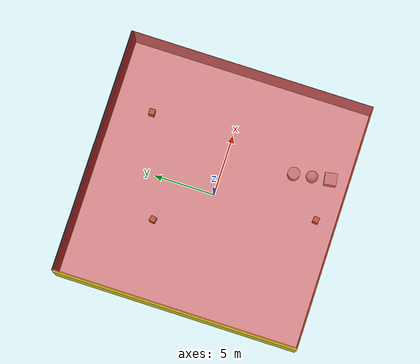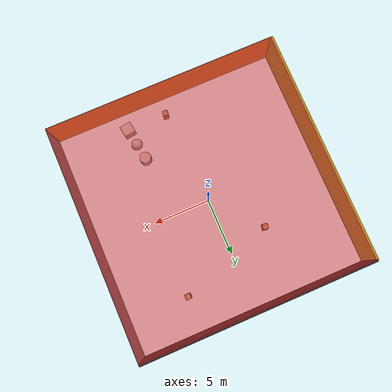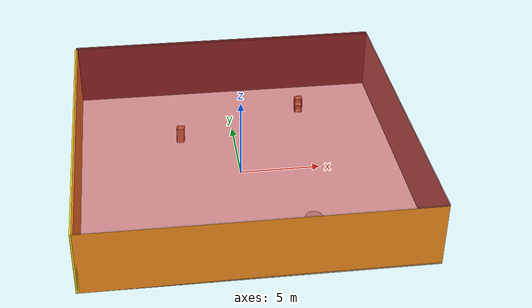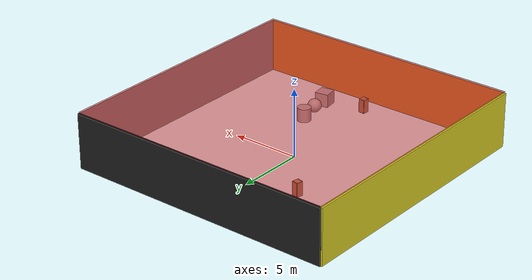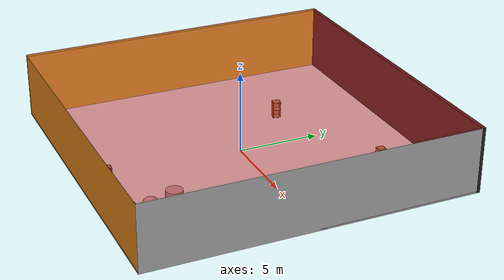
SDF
<sdf version="1.4">
 <world name="default">
  <physics type="ode">
   <max_step_size>0.001</max_step_size>
   <real_time_factor>1</real_time_factor>
   <real_time_update_rate>1000</real_time_update_rate>
   <gravity>0 0 -9.8</gravity>
  </physics>
  <scene><ambient>0.4 0.4 0.4 1</ambient><background>0.7 0.7 0.7 1</background><shadows>1</shadows></scene>
  <model name="Surrounding">
   <static>1</static>
   <link name="Ceiling">
    <collision name="Ceiling_Collision"><geometry><box><size>20 20 0.1</size></box></geometry></collision>
    <visual name="Ceiling_Visual">
     <geometry><box><size>20 20 0.1</size></box></geometry>
     <material>
      <script><uri>file://media/materials/scripts/gazebo.material</uri><name>Gazebo/RedTransparent</name></script>
     </material>
    </visual>
    <pose>0 0 4.05 0 0 0</pose>
   </link>
   <link name="Wall_South">
    <collision name="Wall_South_Collision">
     <geometry><box><size>20 0 4</size></box></geometry>
     <pose>0 0 2 0 -0 0</pose>
    </collision>
    <visual name="Wall_South_Visual">
     <pose>0 0 2 0 -0 0</pose>
     <geometry><box><size>20 0 4</size></box></geometry>
     <material>
      <script><uri>file://media/materials/scripts/gazebo.material</uri><name>Gazebo/Orange</name></script>
     </material>
    </visual>
    <velocity_decay><linear>0</linear><angular>0</angular></velocity_decay>
    <pose>0 -10 0 0 -0 0</pose>
   </link>
   <link name="Wall_East">
    <collision name="Wall_21_Collision">
     <geometry><box><size>20 0 4</size></box></geometry>
     <pose>0 0 2 0 -0 0</pose>
    </collision>
    <visual name="Wall_21_Visual">
     <pose>0 0 2 0 -0 0</pose>
     <geometry><box><size>20 0 4</size></box></geometry>
     <material>
      <script><uri>file://media/materials/scripts/gazebo.material</uri><name>Gazebo/GreyGradientSky</name></script>
     </material>
    </visual>
    <velocity_decay><linear>0</linear><angular>0</angular></velocity_decay>
    <pose>10 0 0 0 -0 1.5708</pose>
   </link>
   <link name="Wall_North">
    <collision name="Wall_22_Collision">
     <geometry><box><size>20 0.2 4</size></box></geometry>
     <pose>0 0 2 0 -0 0</pose>
    </collision>
    <visual name="Wall_22_Visual">
     <pose>0 0 2 0 -0 0</pose>
     <geometry><box><size>20 0.2 4</size></box></geometry>
     <material>
      <script><uri>file://media/materials/scripts/gazebo.material</uri><name>Gazebo/Black</name></script>
     </material>
    </visual>
    <velocity_decay><linear>0</linear><angular>0</angular></velocity_decay>
    <pose>0 10 0 0 -0 0</pose>
   </link>
   <link name="Wall_West">
    <collision name="Wall_23_Collision">
     <geometry><box><size>20 0.2 4</size></box></geometry>
     <pose>0 0 2 0 -0 0</pose>
    </collision>
    <visual name="Wall_23_Visual">
     <pose>0 0 2 0 -0 0</pose>
     <geometry><box><size>20 0.2 4</size></box></geometry>
     <material>
      <script><uri>file://media/materials/scripts/gazebo.material</uri><name>Gazebo/Yellow</name></script>
     </material>
    </visual>
    <velocity_decay><linear>0</linear><angular>0</angular></velocity_decay>
    <pose>-10 0 0 0 0 -1.5708</pose>
   </link>
   <link name="Ground_link">
    <collision name="collision">
     <pose>0 0 .05 0 -0 0</pose>
     <geometry><box><size>20 20 0.1</size></box></geometry>
    </collision>
    <visual name="visual">
     <pose>0 0 .05 0 -0 0</pose>
     <geometry><box><size>20 20 0.1</size></box></geometry>
     <material>
      <script><uri>file://media/materials/scripts/gazebo.material</uri><name>Gazebo/GreyTransparent</name></script>
     </material>
    </visual>
   </link>
   <static>1</static>
  </model>
  <spherical_coordinates>
   <surface_model>EARTH_WGS84</surface_model>
   <latitude_deg>0</latitude_deg>
   <longitude_deg>0</longitude_deg>
   <elevation>0</elevation>
   <heading_deg>0</heading_deg>
  </spherical_coordinates>
  <light name="lightball_0" type="diffuse">
   <diffuse>0.8 0.8 0.8 1</diffuse>
   <specular>0.2 0.2 0.2 1</specular>
   <attenuation>
    <range>100</range>
    <constant>0.7</constant>
    <linear>0.01</linear>
    <quadratic>0.001</quadratic>
   </attenuation>
   <direction>-0.5 0.1 -0.9</direction>
   <pose>-5.67751510429 -7.08755802048 3.49290616539 0 0 0</pose>
  </light>
  <light name="lightball_1" type="diffuse">
   <diffuse>0.8 0.8 0.8 1</diffuse>
   <specular>0.2 0.2 0.2 1</specular>
   <attenuation>
    <range>100</range>
    <constant>0.7</constant>
    <linear>0.01</linear>
    <quadratic>0.001</quadratic>
   </attenuation>
   <direction>-0.5 0.1 -0.9</direction>
   <pose>-5.7792822959 -8.85557502532 1.80875577186 0 0 0</pose>
  </light>
  <light name="lightball_2" type="diffuse">
   <diffuse>0.8 0.8 0.8 1</diffuse>
   <specular>0.2 0.2 0.2 1</specular>
   <attenuation>
    <range>100</range>
    <constant>0.7</constant>
    <linear>0.01</linear>
    <quadratic>0.001</quadratic>
   </attenuation>
   <direction>-0.5 0.1 -0.9</direction>
   <pose>3.76409586982 9.35867272397 1.94667245807 0 0 0</pose>
  </light>
  <light name="lightball_3" type="diffuse">
   <diffuse>0.8 0.8 0.8 1</diffuse>
   <specular>0.2 0.2 0.2 1</specular>
   <attenuation>
    <range>100</range>
    <constant>0.7</constant>
    <linear>0.01</linear>
    <quadratic>0.001</quadratic>
   </attenuation>
   <direction>-0.5 0.1 -0.9</direction>
   <pose>-0.628240908665 4.70871296913 3.67077416174 0 0 0</pose>
  </light>
  <light name="lightball_4" type="diffuse">
   <diffuse>0.8 0.8 0.8 1</diffuse>
   <specular>0.2 0.2 0.2 1</specular>
   <attenuation>
    <range>100</range>
    <constant>0.7</constant>
    <linear>0.01</linear>
    <quadratic>0.001</quadratic>
   </attenuation>
   <direction>-0.5 0.1 -0.9</direction>
   <pose>4.52779970803 -7.32485801243 3.72899499755 0 0 0</pose>
  </light>
  <light name="lightball_5" type="diffuse">
   <diffuse>0.8 0.8 0.8 1</diffuse>
   <specular>0.2 0.2 0.2 1</specular>
   <attenuation>
    <range>100</range>
    <constant>0.7</constant>
    <linear>0.01</linear>
    <quadratic>0.001</quadratic>
   </attenuation>
   <direction>-0.5 0.1 -0.9</direction>
   <pose>3.88455344111 -1.71462683243 2.8310400149 0 0 0</pose>
  </light>
  <light name="lightball_6" type="diffuse">
   <diffuse>0.8 0.8 0.8 1</diffuse>
   <specular>0.2 0.2 0.2 1</specular>
   <attenuation>
    <range>100</range>
    <constant>0.7</constant>
    <linear>0.01</linear>
    <quadratic>0.001</quadratic>
   </attenuation>
   <direction>-0.5 0.1 -0.9</direction>
   <pose>-1.71365051941 -3.67870875291 3.84091437055 0 0 0</pose>
  </light>
  <light name="lightball_7" type="diffuse">
   <diffuse>0.8 0.8 0.8 1</diffuse>
   <specular>0.2 0.2 0.2 1</specular>
   <attenuation>
    <range>100</range>
    <constant>0.7</constant>
    <linear>0.01</linear>
    <quadratic>0.001</quadratic>
   </attenuation>
   <direction>-0.5 0.1 -0.9</direction>
   <pose>-0.732650876526 -0.664154108936 1.984301125 0 0 0</pose>
  </light>
  <light name="lightball_8" type="diffuse">
   <diffuse>0.8 0.8 0.8 1</diffuse>
   <specular>0.2 0.2 0.2 1</specular>
   <attenuation>
    <range>100</range>
    <constant>0.7</constant>
    <linear>0.01</linear>
    <quadratic>0.001</quadratic>
   </attenuation>
   <direction>-0.5 0.1 -0.9</direction>
   <pose>-6.83789006538 -1.69296821679 0.977777113392 0 0 0</pose>
  </light>
  <light name="lightball_9" type="diffuse">
   <diffuse>0.8 0.8 0.8 1</diffuse>
   <specular>0.2 0.2 0.2 1</specular>
   <attenuation>
    <range>100</range>
    <constant>0.7</constant>
    <linear>0.01</linear>
    <quadratic>0.001</quadratic>
   </attenuation>
   <direction>-0.5 0.1 -0.9</direction>
   <pose>-3.42478036555 8.66521204738 1.23451980333 0 0 0</pose>
  </light>
  <include><uri>model://cabinet</uri><pose>-3.46505098371 4.01734873027 0 0 0 2.93534160752</pose></include>
  <include><uri>model://cabinet</uri><pose>0.488659137912 -8.42807507584 0 0 0 3.02771099409</pose></include>
  <include>
   <uri>model://textured_shapes</uri>
   <pose>3.82191273952 -7.08077689523 0 0 0 0.154142645689</pose>
  </include>
  <include><uri>model://cabinet</uri><pose>4.7667067753 6.78857874693 0 0 0 1.58612477047</pose></include>
 </world>
</sdf>

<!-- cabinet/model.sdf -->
<sdf version="1.5">
  <model name="cabinet">
    <static>true</static>
    <link name="cabinet_bottom_plate">
      <inertial>
        <pose>0 0 -1 0 0 0</pose>
        <inertia>
          <ixx>2.050000</ixx>
          <ixy>0</ixy>
          <ixz>0</ixz>
          <iyy>2.050000</iyy>
          <iyz>0</iyz>
          <izz>2.050000</izz>
        </inertia>
        <mass>25.000000</mass>
      </inertial>
      <collision name="cabinet_bottom_plate_geom">
        <pose>0 0 0.010000 0 0 0</pose>
        <geometry>
          <box>
            <size>0.450000 0.450000 0.020000</size>
          </box>
        </geometry>
      </collision>
      <visual name="cabinet_bottom_plate_geom_visual">
        <pose>0 0 0.010000 0 0 0</pose>
        <geometry>
          <box>
            <size>0.450000 0.450000 0.020000</size>
          </box>
        </geometry>
        <material>
          <script>
            <uri>model://media/materials/scripts/gazebo.material</uri>
            <name>Gazebo/Wood</name>
          </script>
        </material>
      </visual>
      <collision name="cabinet_bottom_plate_geom_cabinet_back_plate">
        <pose>0.235000 0 0.510000 0 0 0</pose>
        <geometry>
          <box>
            <size>0.020000 0.450000 1.020000</size>
          </box>
        </geometry>
      </collision>
      <visual name="cabinet_bottom_plate_geom_cabinet_back_plate_visual">
        <pose>0.235000 0 0.510000 0 0 0</pose>
        <geometry>
          <box>
            <size>0.020000 0.450000 1.020000</size>
          </box>
        </geometry>
        <material>
          <script>
            <uri>model://media/materials/scripts/gazebo.material</uri>
            <name>Gazebo/Wood</name>
          </script>
        </material>
      </visual>
      <collision name="cabinet_bottom_plate_geom_cabinet_left_plate">
        <pose>0 0.235000 0.510000 0 0 0</pose>
        <geometry>
          <box>
            <size>0.450000 0.020000 1.020000</size>
          </box>
        </geometry>
      </collision>
      <visual name="cabinet_bottom_plate_geom_cabinet_left_plate_visual">
        <pose>0 0.235000 0.510000 0 0 0</pose>
        <geometry>
          <box>
            <size>0.450000 0.020000 1.020000</size>
          </box>
        </geometry>
        <material>
          <script>
            <uri>model://media/materials/scripts/gazebo.material</uri>
            <name>Gazebo/Wood</name>
          </script>
        </material>
      </visual>
      <collision name="cabinet_bottom_plate_geom_cabinet_middle_plate">
        <pose>0 0 0.510000 0 0 0</pose>
        <geometry>
          <box>
            <size>0.450000 0.450000 0.020000</size>
          </box>
        </geometry>
      </collision>
      <visual name="cabinet_bottom_plate_geom_cabinet_middle_plate_visual">
        <pose>0 0 0.510000 0 0 0</pose>
        <geometry>
          <box>
            <size>0.450000 0.450000 0.020000</size>
          </box>
        </geometry>
        <material>
          <script>
            <uri>model://media/materials/scripts/gazebo.material</uri>
            <name>Gazebo/Wood</name>
          </script>
        </material>
      </visual>
      <collision name="cabinet_bottom_plate_geom_cabinet_right_plate">
        <pose>0 -0.235000 0.510000 0 0 0</pose>
        <geometry>
          <box>
            <size>0.450000 0.020000 1.020000</size>
          </box>
        </geometry>
      </collision>
      <visual name="cabinet_bottom_plate_geom_cabinet_right_plate_visual">
        <pose>0 -0.235000 0.510000 0 0 0</pose>
        <geometry>
          <box>
            <size>0.450000 0.020000 1.020000</size>
          </box>
        </geometry>
        <material>
          <script>
            <uri>model://media/materials/scripts/gazebo.material</uri>
            <name>Gazebo/Wood</name>
          </script>
        </material>
      </visual>
      <collision name="cabinet_bottom_plate_geom_cabinet_top_plate">
        <pose>0 0 1.010000 0 0 0</pose>
        <geometry>
          <box>
            <size>0.450000 0.450000 0.020000</size>
          </box>
        </geometry>
      </collision>
      <visual name="cabinet_bottom_plate_geom_cabinet_top_plate_visual">
        <pose>0 0 1.010000 0 0 0</pose>
        <geometry>
          <box>
            <size>0.450000 0.450000 0.020000</size>
          </box>
        </geometry>
        <material>
          <script>
            <uri>model://media/materials/scripts/gazebo.material</uri>
            <name>Gazebo/Wood</name>
          </script>
        </material>
      </visual>
    </link>
  </model>
</sdf>

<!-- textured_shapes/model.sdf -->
<sdf version="1.6">
  <model name="textured_shapes">
    <pose>0 0 0.5 0 0 0</pose>
    <link name="box">
      <pose>0 -1.5 0 0 0 0</pose>
      <collision name="collision">
        <geometry>
          <box>
            <size>1 1 1</size>
          </box>
        </geometry>
      </collision>
      <visual name="visual">
        <geometry>
          <box>
            <size>1 1 1</size>
          </box>
        </geometry>
        <material>
          <script>
            <uri>model://../model_source/models/textured_shapes/materials/scripts</uri>
            <uri>model://../model_source/models/textured_shapes/materials/textures</uri>
            <name>TexturedShape/Squares</name>
          </script>
        </material>
      </visual>
    </link>
    <link name="sphere">
      <collision name="collision">
        <geometry>
          <sphere>
            <radius>0.5</radius>
          </sphere>
        </geometry>
      </collision>
      <visual name="visual">
        <geometry>
          <sphere>
            <radius>0.5</radius>
          </sphere>
        </geometry>
        <material>
          <script>
            <uri>model://../model_source/models/textured_shapes/materials/scripts</uri>
            <uri>model://../model_source/models/textured_shapes/materials/textures</uri>
            <name>TexturedShape/Squares</name>
          </script>
        </material>
      </visual>
    </link>
    <link name="cylinder">
      <pose>0 1.5 0 0 0 0</pose>
      <collision name="collision">
        <geometry>
          <cylinder>
            <radius>0.5</radius>
            <length>1</length>
          </cylinder>
        </geometry>
      </collision>
      <visual name="visual">
        <geometry>
          <cylinder>
            <radius>0.5</radius>
            <length>1</length>
          </cylinder>
        </geometry>
        <material>
          <script>
            <uri>model://../model_source/models/textured_shapes/materials/scripts</uri>
            <uri>model://../model_source/models/textured_shapes/materials/textures</uri>
            <name>TexturedShape/Squares</name>
          </script>
        </material>
      </visual>
    </link>
  </model>
</sdf>
